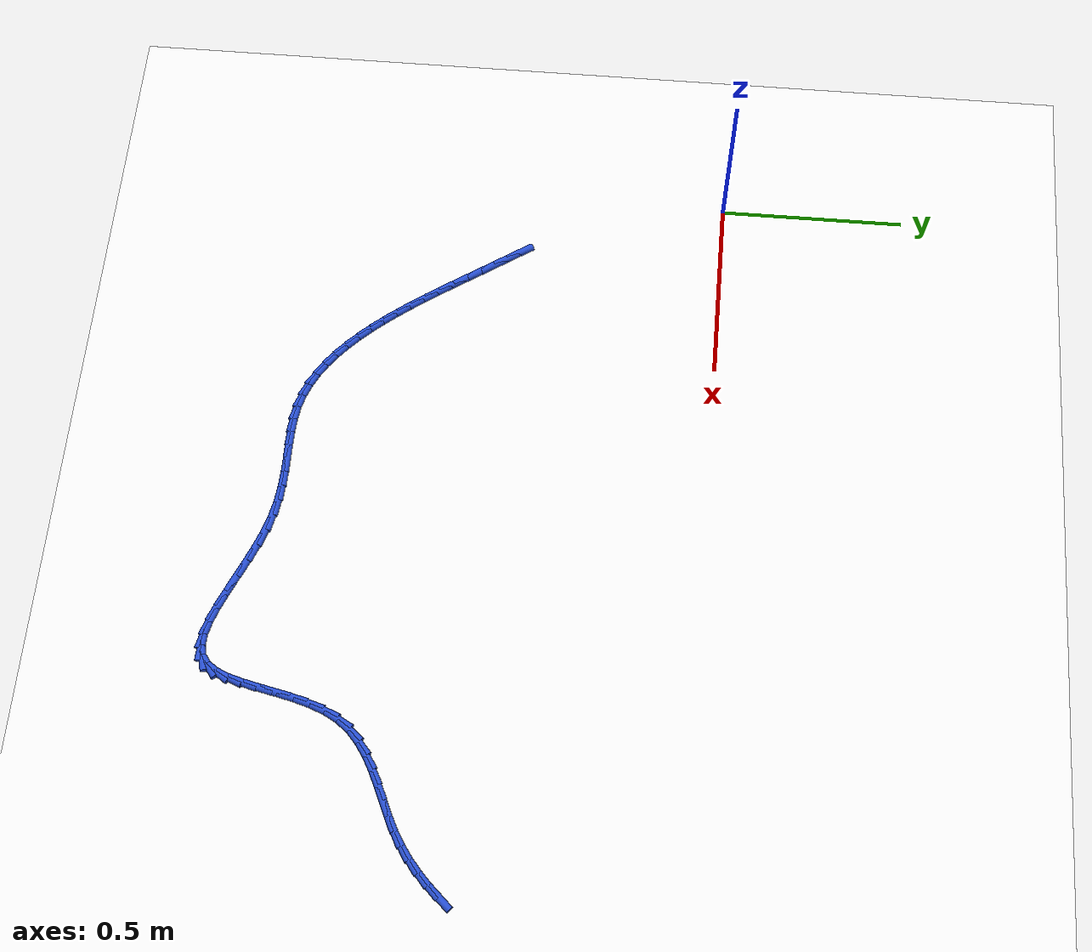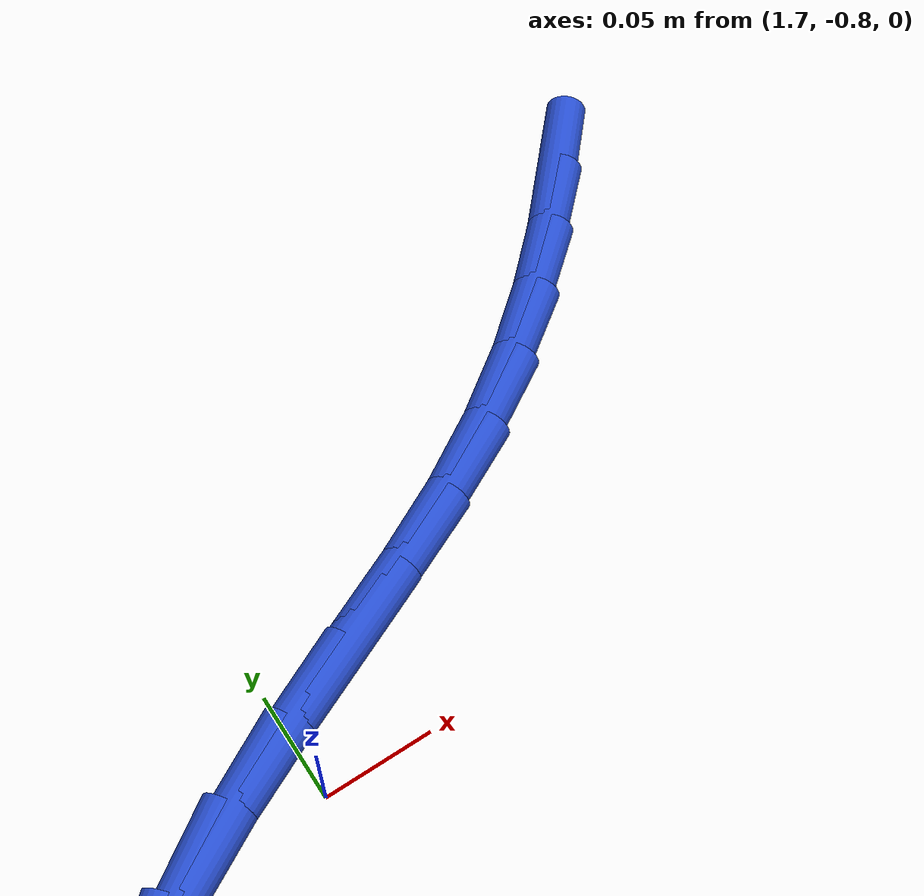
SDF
<sdf version="1.6">
 <world name="default">
  <model name="ground_plane">
   <static>1</static>
   <link name="link">
    <collision name="collision">
     <geometry><plane><normal>0 0 1</normal><size>100 100</size></plane></geometry>
     <surface><friction><ode><mu>100</mu><mu2>50</mu2></ode></friction></surface>
    </collision>
    <visual name="visual">
     <cast_shadows>0</cast_shadows>
     <geometry><plane><normal>0 0 1</normal><size>100 100</size></plane></geometry>
     <material>
      <script><uri>file://media/materials/scripts/gazebo.material</uri><name>Gazebo/WhiteGlow</name></script>
     </material>
    </visual>
   </link>
  </model>
  <model name="line">
   <link name="link_105">
    <pose>1.9619749329058853 -0.5897605196526706 0.01 0 1.57 0.8349763289532054</pose>
    <collision name="collision">
     <geometry><cylinder><radius>0.01</radius><length>0.08</length></cylinder></geometry>
    </collision>
    <visual name="visual">
     <material>
      <script><name>Gazebo/Blue</name><uri>file://media/materials/scripts/gazebo.material</uri></script>
     </material>
     <geometry><cylinder><radius>0.01</radius><length>0.08</length></cylinder></geometry>
    </visual>
   </link>
   <link name="link_106">
    <pose>1.9357776653098375 -0.6186932742543564 0.01 0 1.57 0.7749186930595295</pose>
    <collision name="collision">
     <geometry><cylinder><radius>0.01</radius><length>0.08</length></cylinder></geometry>
    </collision>
    <visual name="visual">
     <material>
      <script><name>Gazebo/Blue</name><uri>file://media/materials/scripts/gazebo.material</uri></script>
     </material>
     <geometry><cylinder><radius>0.01</radius><length>0.08</length></cylinder></geometry>
    </visual>
   </link>
   <link name="link_107">
    <pose>1.9080746168019924 -0.6458216969509747 0.01 0 1.57 0.708026309735153</pose>
    <collision name="collision">
     <geometry><cylinder><radius>0.01</radius><length>0.08</length></cylinder></geometry>
    </collision>
    <visual name="visual">
     <material>
      <script><name>Gazebo/Blue</name><uri>file://media/materials/scripts/gazebo.material</uri></script>
     </material>
     <geometry><cylinder><radius>0.01</radius><length>0.08</length></cylinder></geometry>
    </visual>
   </link>
   <link name="link_108">
    <pose>1.8786535310823425 -0.671009166132648 0.01 0 1.57 0.635210237496764</pose>
    <collision name="collision">
     <geometry><cylinder><radius>0.01</radius><length>0.08</length></cylinder></geometry>
    </collision>
    <visual name="visual">
     <material>
      <script><name>Gazebo/Blue</name><uri>file://media/materials/scripts/gazebo.material</uri></script>
     </material>
     <geometry><cylinder><radius>0.01</radius><length>0.08</length></cylinder></geometry>
    </visual>
   </link>
   <link name="link_109">
    <pose>1.8473021518508794 -0.6941190601894995 0.01 0 1.57 0.5577859163721824</pose>
    <collision name="collision">
     <geometry><cylinder><radius>0.01</radius><length>0.08</length></cylinder></geometry>
    </collision>
    <visual name="visual">
     <material>
      <script><name>Gazebo/Blue</name><uri>file://media/materials/scripts/gazebo.material</uri></script>
     </material>
     <geometry><cylinder><radius>0.01</radius><length>0.08</length></cylinder></geometry>
    </visual>
   </link>
   <link name="link_110">
    <pose>1.8138083100994142 -0.7150148445384512 0.01 0 1.57 0.48548808842270263</pose>
    <collision name="collision">
     <geometry><cylinder><radius>0.01</radius><length>0.08</length></cylinder></geometry>
    </collision>
    <visual name="visual">
     <material>
      <script><name>Gazebo/Blue</name><uri>file://media/materials/scripts/gazebo.material</uri></script>
     </material>
     <geometry><cylinder><radius>0.01</radius><length>0.08</length></cylinder></geometry>
    </visual>
   </link>
   <link name="link_111">
    <pose>1.778201705572507 -0.7338011190358446 0.01 0 1.57 0.4437118482079033</pose>
    <collision name="collision">
     <geometry><cylinder><radius>0.01</radius><length>0.08</length></cylinder></geometry>
    </collision>
    <visual name="visual">
     <material>
      <script><name>Gazebo/Blue</name><uri>file://media/materials/scripts/gazebo.material</uri></script>
     </material>
     <geometry><cylinder><radius>0.01</radius><length>0.08</length></cylinder></geometry>
    </visual>
   </link>
   <link name="link_112">
    <pose>1.7412818618404293 -0.751349970179242 0.01 0 1.57 0.4352647840380532</pose>
    <collision name="collision">
     <geometry><cylinder><radius>0.01</radius><length>0.08</length></cylinder></geometry>
    </collision>
    <visual name="visual">
     <material>
      <script><name>Gazebo/Blue</name><uri>file://media/materials/scripts/gazebo.material</uri></script>
     </material>
     <geometry><cylinder><radius>0.01</radius><length>0.08</length></cylinder></geometry>
    </visual>
   </link>
   <link name="link_113">
    <pose>1.7040011196790115 -0.7686858377188561 0.01 0 1.57 0.45933571590329275</pose>
    <collision name="collision">
     <geometry><cylinder><radius>0.01</radius><length>0.08</length></cylinder></geometry>
    </collision>
    <visual name="visual">
     <material>
      <script><name>Gazebo/Blue</name><uri>file://media/materials/scripts/gazebo.material</uri></script>
     </material>
     <geometry><cylinder><radius>0.01</radius><length>0.08</length></cylinder></geometry>
    </visual>
   </link>
   <link name="link_114">
    <pose>1.6673118198640846 -0.7868331614048992 0.01 0 1.57 0.5170000016254456</pose>
    <collision name="collision">
     <geometry><cylinder><radius>0.01</radius><length>0.08</length></cylinder></geometry>
    </collision>
    <visual name="visual">
     <material>
      <script><name>Gazebo/Blue</name><uri>file://media/materials/scripts/gazebo.material</uri></script>
     </material>
     <geometry><cylinder><radius>0.01</radius><length>0.08</length></cylinder></geometry>
    </visual>
   </link>
   <link name="link_115">
    <pose>1.6321663031714786 -0.8068163809875845 0.01 0 1.57 0.6104994069622448</pose>
    <collision name="collision">
     <geometry><cylinder><radius>0.01</radius><length>0.08</length></cylinder></geometry>
    </collision>
    <visual name="visual">
     <material>
      <script><name>Gazebo/Blue</name><uri>file://media/materials/scripts/gazebo.material</uri></script>
     </material>
     <geometry><cylinder><radius>0.01</radius><length>0.08</length></cylinder></geometry>
    </visual>
   </link>
   <link name="link_116">
    <pose>1.5995169103770246 -0.8296599362171234 0.01 0 1.57 0.7412175580372814</pose>
    <collision name="collision">
     <geometry><cylinder><radius>0.01</radius><length>0.08</length></cylinder></geometry>
    </collision>
    <visual name="visual">
     <material>
      <script><name>Gazebo/Blue</name><uri>file://media/materials/scripts/gazebo.material</uri></script>
     </material>
     <geometry><cylinder><radius>0.01</radius><length>0.08</length></cylinder></geometry>
    </visual>
   </link>
   <link name="link_117">
    <pose>1.5703159822565533 -0.8563882668437292 0.01 0 1.57 0.9059606023154728</pose>
    <collision name="collision">
     <geometry><cylinder><radius>0.01</radius><length>0.08</length></cylinder></geometry>
    </collision>
    <visual name="visual">
     <material>
      <script><name>Gazebo/Blue</name><uri>file://media/materials/scripts/gazebo.material</uri></script>
     </material>
     <geometry><cylinder><radius>0.01</radius><length>0.08</length></cylinder></geometry>
    </visual>
   </link>
   <link name="link_118">
    <pose>1.5455158595858949 -0.8880258126176144 0.01 0 1.57 1.08191504695779</pose>
    <collision name="collision">
     <geometry><cylinder><radius>0.01</radius><length>0.08</length></cylinder></geometry>
    </collision>
    <visual name="visual">
     <material>
      <script><name>Gazebo/Blue</name><uri>file://media/materials/scripts/gazebo.material</uri></script>
     </material>
     <geometry><cylinder><radius>0.01</radius><length>0.08</length></cylinder></geometry>
    </visual>
   </link>
   <link name="link_119">
    <pose>1.5257506949724549 -0.9251817298362242 0.01 0 1.57 1.213858199481864</pose>
    <collision name="collision">
     <geometry><cylinder><radius>0.01</radius><length>0.08</length></cylinder></geometry>
    </collision>
    <visual name="visual">
     <material>
      <script><name>Gazebo/Blue</name><uri>file://media/materials/scripts/gazebo.material</uri></script>
     </material>
     <geometry><cylinder><radius>0.01</radius><length>0.08</length></cylinder></geometry>
    </visual>
   </link>
   <link name="link_120">
    <pose>1.5102792325542291 -0.9666700597210155 0.01 0 1.57 1.299287680782205</pose>
    <collision name="collision">
     <geometry><cylinder><radius>0.01</radius><length>0.08</length></cylinder></geometry>
    </collision>
    <visual name="visual">
     <material>
      <script><name>Gazebo/Blue</name><uri>file://media/materials/scripts/gazebo.material</uri></script>
     </material>
     <geometry><cylinder><radius>0.01</radius><length>0.08</length></cylinder></geometry>
    </visual>
   </link>
   <link name="link_121">
    <pose>1.4979886637181934 -1.0108199112280705 0.01 0 1.57 1.3480931344271125</pose>
    <collision name="collision">
     <geometry><cylinder><radius>0.01</radius><length>0.08</length></cylinder></geometry>
    </collision>
    <visual name="visual">
     <material>
      <script><name>Gazebo/Blue</name><uri>file://media/materials/scripts/gazebo.material</uri></script>
     </material>
     <geometry><cylinder><radius>0.01</radius><length>0.08</length></cylinder></geometry>
    </visual>
   </link>
   <link name="link_122">
    <pose>1.4877661739085 -1.055960385557195 0.01 0 1.57 1.3652999691165337</pose>
    <collision name="collision">
     <geometry><cylinder><radius>0.01</radius><length>0.08</length></cylinder></geometry>
    </collision>
    <visual name="visual">
     <material>
      <script><name>Gazebo/Blue</name><uri>file://media/materials/scripts/gazebo.material</uri></script>
     </material>
     <geometry><cylinder><radius>0.01</radius><length>0.08</length></cylinder></geometry>
    </visual>
   </link>
   <link name="link_123">
    <pose>1.4784989485693008 -1.1004205839081942 0.01 0 1.57 1.350606806682761</pose>
    <collision name="collision">
     <geometry><cylinder><radius>0.01</radius><length>0.08</length></cylinder></geometry>
    </collision>
    <visual name="visual">
     <material>
      <script><name>Gazebo/Blue</name><uri>file://media/materials/scripts/gazebo.material</uri></script>
     </material>
     <geometry><cylinder><radius>0.01</radius><length>0.08</length></cylinder></geometry>
    </visual>
   </link>
   <link name="link_124">
    <pose>1.4690741731447483 -1.1425296074808733 0.01 0 1.57 1.2970380406903523</pose>
    <collision name="collision">
     <geometry><cylinder><radius>0.01</radius><length>0.08</length></cylinder></geometry>
    </collision>
    <visual name="visual">
     <material>
      <script><name>Gazebo/Blue</name><uri>file://media/materials/scripts/gazebo.material</uri></script>
     </material>
     <geometry><cylinder><radius>0.01</radius><length>0.08</length></cylinder></geometry>
    </visual>
   </link>
   <link name="link_125">
    <pose>1.4583790330789954 -1.1806165574750378 0.01 0 1.57 1.1870812633671495</pose>
    <collision name="collision">
     <geometry><cylinder><radius>0.01</radius><length>0.08</length></cylinder></geometry>
    </collision>
    <visual name="visual">
     <material>
      <script><name>Gazebo/Blue</name><uri>file://media/materials/scripts/gazebo.material</uri></script>
     </material>
     <geometry><cylinder><radius>0.01</radius><length>0.08</length></cylinder></geometry>
    </visual>
   </link>
   <link name="link_126">
    <pose>1.445300713816193 -1.2130105350904927 0.01 0 1.57 0.985909724917114</pose>
    <collision name="collision">
     <geometry><cylinder><radius>0.01</radius><length>0.08</length></cylinder></geometry>
    </collision>
    <visual name="visual">
     <material>
      <script><name>Gazebo/Blue</name><uri>file://media/materials/scripts/gazebo.material</uri></script>
     </material>
     <geometry><cylinder><radius>0.01</radius><length>0.08</length></cylinder></geometry>
    </visual>
   </link>
   <link name="link_127">
    <pose>1.4287264008004943 -1.238040641527042 0.01 0 1.57 0.6480998433481684</pose>
    <collision name="collision">
     <geometry><cylinder><radius>0.01</radius><length>0.08</length></cylinder></geometry>
    </collision>
    <visual name="visual">
     <material>
      <script><name>Gazebo/Blue</name><uri>file://media/materials/scripts/gazebo.material</uri></script>
     </material>
     <geometry><cylinder><radius>0.01</radius><length>0.08</length></cylinder></geometry>
    </visual>
   </link>
   <link name="link_128">
    <pose>1.4075606311939122 -1.2540675833021124 0.01 0 1.57 0.24957789033742994</pose>
    <collision name="collision">
     <geometry><cylinder><radius>0.01</radius><length>0.08</length></cylinder></geometry>
    </collision>
    <visual name="visual">
     <material>
      <script><name>Gazebo/Blue</name><uri>file://media/materials/scripts/gazebo.material</uri></script>
     </material>
     <geometry><cylinder><radius>0.01</radius><length>0.08</length></cylinder></geometry>
    </visual>
   </link>
   <link name="link_129">
    <pose>1.3814111305430588 -1.2607328906775706 0.01 0 1.57 -0.04442675570059731</pose>
    <collision name="collision">
     <geometry><cylinder><radius>0.01</radius><length>0.08</length></cylinder></geometry>
    </collision>
    <visual name="visual">
     <material>
      <script><name>Gazebo/Blue</name><uri>file://media/materials/scripts/gazebo.material</uri></script>
     </material>
     <geometry><cylinder><radius>0.01</radius><length>0.08</length></cylinder></geometry>
    </visual>
   </link>
   <link name="link_130">
    <pose>1.3508160141181613 -1.2593727539462023 0.01 0 1.57 -0.2264014122634015</pose>
    <collision name="collision">
     <geometry><cylinder><radius>0.01</radius><length>0.08</length></cylinder></geometry>
    </collision>
    <visual name="visual">
     <material>
      <script><name>Gazebo/Blue</name><uri>file://media/materials/scripts/gazebo.material</uri></script>
     </material>
     <geometry><cylinder><radius>0.01</radius><length>0.08</length></cylinder></geometry>
    </visual>
   </link>
   <link name="link_131">
    <pose>1.3163773087046546 -1.2514397751448076 0.01 0 1.57 -0.33348244298107926</pose>
    <collision name="collision">
     <geometry><cylinder><radius>0.01</radius><length>0.08</length></cylinder></geometry>
    </collision>
    <visual name="visual">
     <material>
      <script><name>Gazebo/Blue</name><uri>file://media/materials/scripts/gazebo.material</uri></script>
     </material>
     <geometry><cylinder><radius>0.01</radius><length>0.08</length></cylinder></geometry>
    </visual>
   </link>
   <link name="link_132">
    <pose>1.278697041087977 -1.2383865563101895 0.01 0 1.57 -0.3931191735830683</pose>
    <collision name="collision">
     <geometry><cylinder><radius>0.01</radius><length>0.08</length></cylinder></geometry>
    </collision>
    <visual name="visual">
     <material>
      <script><name>Gazebo/Blue</name><uri>file://media/materials/scripts/gazebo.material</uri></script>
     </material>
     <geometry><cylinder><radius>0.01</radius><length>0.08</length></cylinder></geometry>
    </visual>
   </link>
   <link name="link_133">
    <pose>1.238377238053562 -1.2216656994791477 0.01 0 1.57 -0.4203991112648313</pose>
    <collision name="collision">
     <geometry><cylinder><radius>0.01</radius><length>0.08</length></cylinder></geometry>
    </collision>
    <visual name="visual">
     <material>
      <script><name>Gazebo/Blue</name><uri>file://media/materials/scripts/gazebo.material</uri></script>
     </material>
     <geometry><cylinder><radius>0.01</radius><length>0.08</length></cylinder></geometry>
    </visual>
   </link>
   <link name="link_134">
    <pose>1.1960199263868465 -1.2027298066884842 0.01 0 1.57 -0.42269382660078836</pose>
    <collision name="collision">
     <geometry><cylinder><radius>0.01</radius><length>0.08</length></cylinder></geometry>
    </collision>
    <visual name="visual">
     <material>
      <script><name>Gazebo/Blue</name><uri>file://media/materials/scripts/gazebo.material</uri></script>
     </material>
     <geometry><cylinder><radius>0.01</radius><length>0.08</length></cylinder></geometry>
    </visual>
   </link>
   <link name="link_135">
    <pose>1.1522271328732658 -1.183031479974999 0.01 0 1.57 -0.4026675959763152</pose>
    <collision name="collision">
     <geometry><cylinder><radius>0.01</radius><length>0.08</length></cylinder></geometry>
    </collision>
    <visual name="visual">
     <material>
      <script><name>Gazebo/Blue</name><uri>file://media/materials/scripts/gazebo.material</uri></script>
     </material>
     <geometry><cylinder><radius>0.01</radius><length>0.08</length></cylinder></geometry>
    </visual>
   </link>
   <link name="link_136">
    <pose>1.1076008842982554 -1.1640233213754942 0.01 0 1.57 -0.3596256476075354</pose>
    <collision name="collision">
     <geometry><cylinder><radius>0.01</radius><length>0.08</length></cylinder></geometry>
    </collision>
    <visual name="visual">
     <material>
      <script><name>Gazebo/Blue</name><uri>file://media/materials/scripts/gazebo.material</uri></script>
     </material>
     <geometry><cylinder><radius>0.01</radius><length>0.08</length></cylinder></geometry>
    </visual>
   </link>
   <link name="link_137">
    <pose>1.062743207447251 -1.14715793292677 0.01 0 1.57 -0.2898865409477487</pose>
    <collision name="collision">
     <geometry><cylinder><radius>0.01</radius><length>0.08</length></cylinder></geometry>
    </collision>
    <visual name="visual">
     <material>
      <script><name>Gazebo/Blue</name><uri>file://media/materials/scripts/gazebo.material</uri></script>
     </material>
     <geometry><cylinder><radius>0.01</radius><length>0.08</length></cylinder></geometry>
    </visual>
   </link>
   <link name="link_138">
    <pose>1.0182561291056886 -1.133887916665628 0.01 0 1.57 -0.1953450958879274</pose>
    <collision name="collision">
     <geometry><cylinder><radius>0.01</radius><length>0.08</length></cylinder></geometry>
    </collision>
    <visual name="visual">
     <material>
      <script><name>Gazebo/Blue</name><uri>file://media/materials/scripts/gazebo.material</uri></script>
     </material>
     <geometry><cylinder><radius>0.01</radius><length>0.08</length></cylinder></geometry>
    </visual>
   </link>
   <link name="link_139">
    <pose>0.9746516291510412 -1.1252599645216852 0.01 0 1.57 -0.1092284554380349</pose>
    <collision name="collision">
     <geometry><cylinder><radius>0.01</radius><length>0.08</length></cylinder></geometry>
    </collision>
    <visual name="visual">
     <material>
      <script><name>Gazebo/Blue</name><uri>file://media/materials/scripts/gazebo.material</uri></script>
     </material>
     <geometry><cylinder><radius>0.01</radius><length>0.08</length></cylinder></geometry>
    </visual>
   </link>
   <link name="link_140">
    <pose>0.9320574862811618 -1.1205888806171205 0.01 0 1.57 -0.0447558155990737</pose>
    <collision name="collision">
     <geometry><cylinder><radius>0.01</radius><length>0.08</length></cylinder></geometry>
    </collision>
    <visual name="visual">
     <material>
      <script><name>Gazebo/Blue</name><uri>file://media/materials/scripts/gazebo.material</uri></script>
     </material>
     <geometry><cylinder><radius>0.01</radius><length>0.08</length></cylinder></geometry>
    </visual>
   </link>
   <link name="link_141">
    <pose>0.8904990306077739 -1.1187276551427148 0.01 0 1.57 -0.004898570891929254</pose>
    <collision name="collision">
     <geometry><cylinder><radius>0.01</radius><length>0.08</length></cylinder></geometry>
    </collision>
    <visual name="visual">
     <material>
      <script><name>Gazebo/Blue</name><uri>file://media/materials/scripts/gazebo.material</uri></script>
     </material>
     <geometry><cylinder><radius>0.01</radius><length>0.08</length></cylinder></geometry>
    </visual>
   </link>
   <link name="link_142">
    <pose>0.8500015912862997 -1.1185292739784698 0.01 0 1.57 0.008054639699042732</pose>
    <collision name="collision">
     <geometry><cylinder><radius>0.01</radius><length>0.08</length></cylinder></geometry>
    </collision>
    <visual name="visual">
     <material>
      <script><name>Gazebo/Blue</name><uri>file://media/materials/scripts/gazebo.material</uri></script>
     </material>
     <geometry><cylinder><radius>0.01</radius><length>0.08</length></cylinder></geometry>
    </visual>
   </link>
   <link name="link_143">
    <pose>0.8105904974721632 -1.1188467230043877 0.01 0 1.57 -0.00819145286385281</pose>
    <collision name="collision">
     <geometry><cylinder><radius>0.01</radius><length>0.08</length></cylinder></geometry>
    </collision>
    <visual name="visual">
     <material>
      <script><name>Gazebo/Blue</name><uri>file://media/materials/scripts/gazebo.material</uri></script>
     </material>
     <geometry><cylinder><radius>0.01</radius><length>0.08</length></cylinder></geometry>
    </visual>
   </link>
   <link name="link_144">
    <pose>0.7722910783207865 -1.1185329881004713 0.01 0 1.57 -0.056232285333852106</pose>
    <collision name="collision">
     <geometry><cylinder><radius>0.01</radius><length>0.08</length></cylinder></geometry>
    </collision>
    <visual name="visual">
     <material>
      <script><name>Gazebo/Blue</name><uri>file://media/materials/scripts/gazebo.material</uri></script>
     </material>
     <geometry><cylinder><radius>0.01</radius><length>0.08</length></cylinder></geometry>
    </visual>
   </link>
   <link name="link_145">
    <pose>0.7351286629875919 -1.116441055146722 0.01 0 1.57 -0.13847292085413124</pose>
    <collision name="collision">
     <geometry><cylinder><radius>0.01</radius><length>0.08</length></cylinder></geometry>
    </collision>
    <visual name="visual">
     <material>
      <script><name>Gazebo/Blue</name><uri>file://media/materials/scripts/gazebo.material</uri></script>
     </material>
     <geometry><cylinder><radius>0.01</radius><length>0.08</length></cylinder></geometry>
    </visual>
   </link>
   <link name="link_146">
    <pose>0.6991285806280024 -1.1114239100231424 0.01 0 1.57 -0.25140170360723935</pose>
    <collision name="collision">
     <geometry><cylinder><radius>0.01</radius><length>0.08</length></cylinder></geometry>
    </collision>
    <visual name="visual">
     <material>
      <script><name>Gazebo/Blue</name><uri>file://media/materials/scripts/gazebo.material</uri></script>
     </material>
     <geometry><cylinder><radius>0.01</radius><length>0.08</length></cylinder></geometry>
    </visual>
   </link>
   <link name="link_147">
    <pose>0.6643079679480322 -1.1024807387874478 0.01 0 1.57 -0.36660909459841534</pose>
    <collision name="collision">
     <geometry><cylinder><radius>0.01</radius><length>0.08</length></cylinder></geometry>
    </collision>
    <visual name="visual">
     <material>
      <script><name>Gazebo/Blue</name><uri>file://media/materials/scripts/gazebo.material</uri></script>
     </material>
     <geometry><cylinder><radius>0.01</radius><length>0.08</length></cylinder></geometry>
    </visual>
   </link>
   <link name="link_148">
    <pose>0.630631328051367 -1.0895500121521116 0.01 0 1.57 -0.4713228557261431</pose>
    <collision name="collision">
     <geometry><cylinder><radius>0.01</radius><length>0.08</length></cylinder></geometry>
    </collision>
    <visual name="visual">
     <material>
      <script><name>Gazebo/Blue</name><uri>file://media/materials/scripts/gazebo.material</uri></script>
     </material>
     <geometry><cylinder><radius>0.01</radius><length>0.08</length></cylinder></geometry>
    </visual>
   </link>
   <link name="link_149">
    <pose>0.5980423494854128 -1.0729416516223818 0.01 0 1.57 -0.5643120643564213</pose>
    <collision name="collision">
     <geometry><cylinder><radius>0.01</radius><length>0.08</length></cylinder></geometry>
    </collision>
    <visual name="visual">
     <material>
      <script><name>Gazebo/Blue</name><uri>file://media/materials/scripts/gazebo.material</uri></script>
     </material>
     <geometry><cylinder><radius>0.01</radius><length>0.08</length></cylinder></geometry>
    </visual>
   </link>
   <link name="link_150">
    <pose>0.5664846693381422 -1.0529664970342332 0.01 0 1.57 -0.6454663808427586</pose>
    <collision name="collision">
     <geometry><cylinder><radius>0.01</radius><length>0.08</length></cylinder></geometry>
    </collision>
    <visual name="visual">
     <material>
      <script><name>Gazebo/Blue</name><uri>file://media/materials/scripts/gazebo.material</uri></script>
     </material>
     <geometry><cylinder><radius>0.01</radius><length>0.08</length></cylinder></geometry>
    </visual>
   </link>
   <link name="link_151">
    <pose>0.5359019246975284 -1.0299353882236406 0.01 0 1.57 -0.7153843416996919</pose>
    <collision name="collision">
     <geometry><cylinder><radius>0.01</radius><length>0.08</length></cylinder></geometry>
    </collision>
    <visual name="visual">
     <material>
      <script><name>Gazebo/Blue</name><uri>file://media/materials/scripts/gazebo.material</uri></script>
     </material>
     <geometry><cylinder><radius>0.01</radius><length>0.08</length></cylinder></geometry>
    </visual>
   </link>
   <link name="link_152">
    <pose>0.5062377526515445 -1.0041591650265784 0.01 0 1.57 -0.7750242311550057</pose>
    <collision name="collision">
     <geometry><cylinder><radius>0.01</radius><length>0.08</length></cylinder></geometry>
    </collision>
    <visual name="visual">
     <material>
      <script><name>Gazebo/Blue</name><uri>file://media/materials/scripts/gazebo.material</uri></script>
     </material>
     <geometry><cylinder><radius>0.01</radius><length>0.08</length></cylinder></geometry>
    </visual>
   </link>
   <link name="link_153">
    <pose>0.4774357902881636 -0.9759486672790213 0.01 0 1.57 -0.8254558417189907</pose>
    <collision name="collision">
     <geometry><cylinder><radius>0.01</radius><length>0.08</length></cylinder></geometry>
    </collision>
    <visual name="visual">
     <material>
      <script><name>Gazebo/Blue</name><uri>file://media/materials/scripts/gazebo.material</uri></script>
     </material>
     <geometry><cylinder><radius>0.01</radius><length>0.08</length></cylinder></geometry>
    </visual>
   </link>
   <link name="link_154">
    <pose>0.44943967469535834 -0.9456147348169429 0.01 0 1.57 -0.8677110829742587</pose>
    <collision name="collision">
     <geometry><cylinder><radius>0.01</radius><length>0.08</length></cylinder></geometry>
    </collision>
    <visual name="visual">
     <material>
      <script><name>Gazebo/Blue</name><uri>file://media/materials/scripts/gazebo.material</uri></script>
     </material>
     <geometry><cylinder><radius>0.01</radius><length>0.08</length></cylinder></geometry>
    </visual>
   </link>
   <link name="link_155">
    <pose>0.42219304296110294 -0.9134682074763192 0.01 0 1.57 -0.9027069144915741</pose>
    <collision name="collision">
     <geometry><cylinder><radius>0.01</radius><length>0.08</length></cylinder></geometry>
    </collision>
    <visual name="visual">
     <material>
      <script><name>Gazebo/Blue</name><uri>file://media/materials/scripts/gazebo.material</uri></script>
     </material>
     <geometry><cylinder><radius>0.01</radius><length>0.08</length></cylinder></geometry>
    </visual>
   </link>
   <link name="link_156">
    <pose>0.3956395321733701 -0.879819925093124 0.01 0 1.57 -0.9312129968575945</pose>
    <collision name="collision">
     <geometry><cylinder><radius>0.01</radius><length>0.08</length></cylinder></geometry>
    </collision>
    <visual name="visual">
     <material>
      <script><name>Gazebo/Blue</name><uri>file://media/materials/scripts/gazebo.material</uri></script>
     </material>
     <geometry><cylinder><radius>0.01</radius><length>0.08</length></cylinder></geometry>
    </visual>
   </link>
   <link name="link_157">
    <pose>0.36972277942013304 -0.8449807275033328 0.01 0 1.57 -0.9538433681280016</pose>
    <collision name="collision">
     <geometry><cylinder><radius>0.01</radius><length>0.08</length></cylinder></geometry>
    </collision>
    <visual name="visual">
     <material>
      <script><name>Gazebo/Blue</name><uri>file://media/materials/scripts/gazebo.material</uri></script>
     </material>
     <geometry><cylinder><radius>0.01</radius><length>0.08</length></cylinder></geometry>
    </visual>
   </link>
   <link name="link_158">
    <pose>0.34438642178936474 -0.8092614545429191 0.01 0 1.57 -0.9710587757857049</pose>
    <collision name="collision">
     <geometry><cylinder><radius>0.01</radius><length>0.08</length></cylinder></geometry>
    </collision>
    <visual name="visual">
     <material>
      <script><name>Gazebo/Blue</name><uri>file://media/materials/scripts/gazebo.material</uri></script>
     </material>
     <geometry><cylinder><radius>0.01</radius><length>0.08</length></cylinder></geometry>
    </visual>
   </link>
   <link name="link_159">
    <pose>0.31957409636903794 -0.7729729460478572 0.01 0 1.57 -0.9831716681061871</pose>
    <collision name="collision">
     <geometry><cylinder><radius>0.01</radius><length>0.08</length></cylinder></geometry>
    </collision>
    <visual name="visual">
     <material>
      <script><name>Gazebo/Blue</name><uri>file://media/materials/scripts/gazebo.material</uri></script>
     </material>
     <geometry><cylinder><radius>0.01</radius><length>0.08</length></cylinder></geometry>
    </visual>
   </link>
   <link name="link_160">
    <pose>0.29522944024712694 -0.7364260418541233 0.01 0 1.57 -0.9903491581530831</pose>
    <collision name="collision">
     <geometry><cylinder><radius>0.01</radius><length>0.08</length></cylinder></geometry>
    </collision>
    <visual name="visual">
     <material>
      <script><name>Gazebo/Blue</name><uri>file://media/materials/scripts/gazebo.material</uri></script>
     </material>
     <geometry><cylinder><radius>0.01</radius><length>0.08</length></cylinder></geometry>
    </visual>
   </link>
   <link name="link_161">
    <pose>0.2712960905116042 -0.6999315817976912 0.01 0 1.57 -0.9926110229944642</pose>
    <collision name="collision">
     <geometry><cylinder><radius>0.01</radius><length>0.08</length></cylinder></geometry>
    </collision>
    <visual name="visual">
     <material>
      <script><name>Gazebo/Blue</name><uri>file://media/materials/scripts/gazebo.material</uri></script>
     </material>
     <geometry><cylinder><radius>0.01</radius><length>0.08</length></cylinder></geometry>
    </visual>
   </link>
   <link name="link_162">
    <pose>0.24771768425044288 -0.6638004057145355 0.01 0 1.57 -0.9899522104962364</pose>
    <collision name="collision">
     <geometry><cylinder><radius>0.01</radius><length>0.08</length></cylinder></geometry>
    </collision>
    <visual name="visual">
     <material>
      <script><name>Gazebo/Blue</name><uri>file://media/materials/scripts/gazebo.material</uri></script>
     </material>
     <geometry><cylinder><radius>0.01</radius><length>0.08</length></cylinder></geometry>
    </visual>
   </link>
   <link name="link_163">
    <pose>0.22444046652533334 -0.6283371451619676 0.01 0 1.57 -0.987015382197525</pose>
    <collision name="collision">
     <geometry><cylinder><radius>0.01</radius><length>0.08</length></cylinder></geometry>
    </collision>
    <visual name="visual">
     <material>
      <script><name>Gazebo/Blue</name><uri>file://media/materials/scripts/gazebo.material</uri></script>
     </material>
     <geometry><cylinder><radius>0.01</radius><length>0.08</length></cylinder></geometry>
    </visual>
   </link>
   <link name="link_164">
    <pose>0.201506195148955 -0.593619063695038 0.01 0 1.57 -0.9901199148253261</pose>
    <collision name="collision">
     <geometry><cylinder><radius>0.01</radius><length>0.08</length></cylinder></geometry>
    </collision>
    <visual name="visual">
     <material>
      <script><name>Gazebo/Blue</name><uri>file://media/materials/scripts/gazebo.material</uri></script>
     </material>
     <geometry><cylinder><radius>0.01</radius><length>0.08</length></cylinder></geometry>
    </visual>
   </link>
   <link name="link_165">
    <pose>0.17907740822040358 -0.5594359075252939 0.01 0 1.57 -0.9999814343691198</pose>
    <collision name="collision">
     <geometry><cylinder><radius>0.01</radius><length>0.08</length></cylinder></geometry>
    </collision>
    <visual name="visual">
     <material>
      <script><name>Gazebo/Blue</name><uri>file://media/materials/scripts/gazebo.material</uri></script>
     </material>
     <geometry><cylinder><radius>0.01</radius><length>0.08</length></cylinder></geometry>
    </visual>
   </link>
  </model>
 </world>
</sdf>
